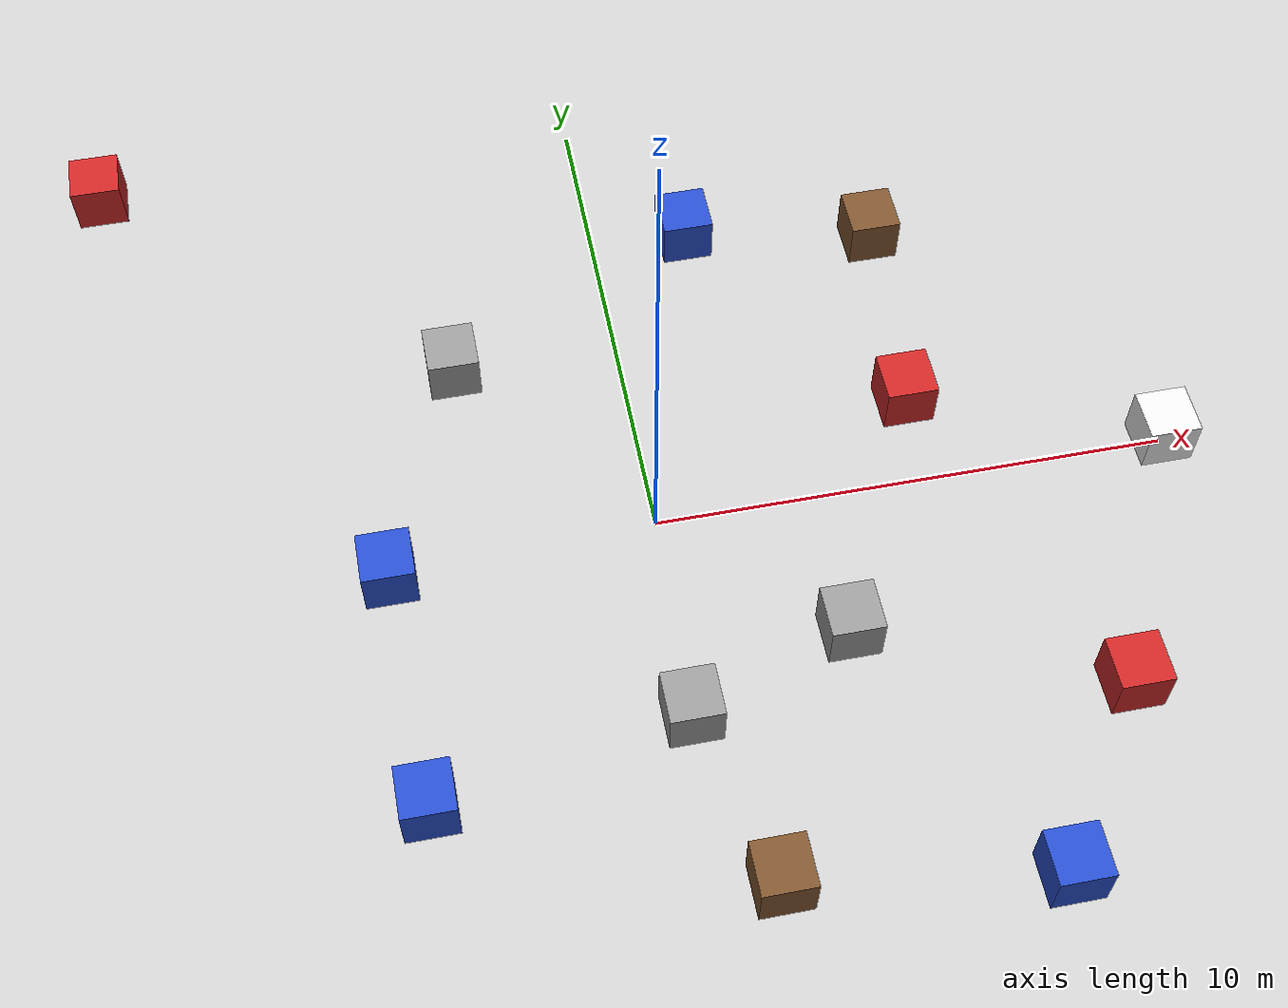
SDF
<sdf version="1.7">
 <world name="default">
  <light name="sun" type="directional">
   <pose>0 0 10 0 -0 0</pose>
   <diffuse>0.8 0.8 0.8 1</diffuse>
   <specular>0.2 0.2 0.2 1</specular>
   <attenuation>
    <range>1000</range>
    <constant>0.9</constant>
    <linear>0.01</linear>
    <quadratic>0.001</quadratic>
   </attenuation>
   <direction>-0.5 0.1 -0.9</direction>
   <spot><inner_angle>0</inner_angle><outer_angle>0</outer_angle><falloff>0</falloff></spot>
  </light>
  <model name="ground_plane">
   <static>1</static>
   <link name="link">
    <collision name="collision">
     <geometry><plane><normal>0 0 1</normal><size>100 100</size></plane></geometry>
     <surface><friction><ode><mu>100</mu><mu2>50</mu2></ode></friction></surface>
    </collision>
    <visual name="visual">
     <cast_shadows>0</cast_shadows>
     <geometry><plane><normal>0 0 1</normal><size>100 100</size></plane></geometry>
     <material>
      <script><uri>file://media/materials/scripts/gazebo.material</uri><name>Gazebo/Grey</name></script>
     </material>
    </visual>
   </link>
  </model>
  <gravity>0 0 -9.8</gravity>
  <magnetic_field>6e-06 2.3e-05 -4.2e-05</magnetic_field>
  <atmosphere type="adiabatic"/>
  <physics type="ode">
   <max_step_size>0.001</max_step_size>
   <real_time_factor>1</real_time_factor>
   <real_time_update_rate>1000</real_time_update_rate>
  </physics>
  <scene><ambient>0.4 0.4 0.4 1</ambient><background>0.7 0.7 0.7 1</background><shadows>1</shadows></scene>
  <spherical_coordinates>
   <surface_model>EARTH_WGS84</surface_model>
   <latitude_deg>0</latitude_deg>
   <longitude_deg>0</longitude_deg>
   <elevation>0</elevation>
   <heading_deg>0</heading_deg>
  </spherical_coordinates>
  <model name="box_red">
   <pose>-9.99999 10 0.499995 0 1e-05 0</pose>
   <scale>1 1 1</scale>
   <link name="link">
    <velocity>0 0 0 0 -0 0</velocity>
    <acceleration>0.010615 0.006191 -9.78231 -0.012424 0.021225 -1.8e-05</acceleration>
    <wrench>0.010615 0.006191 -9.78231 0 -0 0</wrench>
    <inertial>
     <mass>1</mass>
     <inertia>
      <ixx>0.166667</ixx>
      <ixy>0</ixy>
      <ixz>0</ixz>
      <iyy>0.166667</iyy>
      <iyz>0</iyz>
      <izz>0.166667</izz>
     </inertia>
    </inertial>
    <collision name="collision"><geometry><box><size>1 1 1</size></box></geometry></collision>
    <visual name="visual">
     <geometry><box><size>1 1 1</size></box></geometry>
     <material>
      <script><name>Gazebo/Red</name><uri>file://media/materials/scripts/gazebo.material</uri></script>
     </material>
    </visual>
   </link>
  </model>
  <model name="box_blue">
   <pose>-5 -5 0.499995 1e-05 -0 0</pose>
   <scale>1 1 1</scale>
   <link name="link">
    <velocity>0 0 0 0 -0 0</velocity>
    <acceleration>0.004709 -0.011055 -9.78158 0.022108 0.009414 -1e-06</acceleration>
    <wrench>0.004709 -0.011055 -9.78158 0 -0 0</wrench>
    <inertial>
     <mass>1</mass>
     <inertia>
      <ixx>0.166667</ixx>
      <ixy>0</ixy>
      <ixz>0</ixz>
      <iyy>0.166667</iyy>
      <iyz>0</iyz>
      <izz>0.166667</izz>
     </inertia>
    </inertial>
    <collision name="collision"><geometry><box><size>1 1 1</size></box></geometry></collision>
    <visual name="visual">
     <geometry><box><size>1 1 1</size></box></geometry>
     <material>
      <script><name>Gazebo/Blue</name><uri>file://media/materials/scripts/gazebo.material</uri></script>
     </material>
    </visual>
   </link>
  </model>
  <model name="box_grey">
   <pose>3 -3 0.499995 1e-05 -0 0</pose>
   <scale>1 1 1</scale>
   <link name="link">
    <velocity>0 0 0 0 -0 0</velocity>
    <acceleration>0.010017 -0.026792 -9.75765 0.053325 0.020053 -3.9e-05</acceleration>
    <wrench>0.010017 -0.026792 -9.75765 0 -0 0</wrench>
    <inertial>
     <mass>1</mass>
     <inertia><ixx>0.145833</ixx><ixy>0</ixy><ixz>0</ixz><iyy>0.145833</iyy><iyz>0</iyz><izz>0.125</izz></inertia>
    </inertial>
    <collision name="collision"><geometry><box><size>1 1 1</size></box></geometry></collision>
    <visual name="visual">
     <geometry><box><size>1 1 1</size></box></geometry>
     <material>
      <script><name>Gazebo/Grey</name><uri>file://media/materials/scripts/gazebo.material</uri></script>
     </material>
    </visual>
   </link>
  </model>
  <model name="dog">
   <pose>10 -3e-06 0.499995 1e-05 -0 0</pose>
   <scale>1 1 1</scale>
   <link name="link">
    <velocity>0 0 0 0 -0 0</velocity>
    <acceleration>-0.010017 -0.026792 -9.75765 0.053325 -0.020053 3.9e-05</acceleration>
    <wrench>-0.010017 -0.026792 -9.75765 0 -0 0</wrench>
    <inertial>
     <mass>1</mass>
     <inertia><ixx>0.145833</ixx><ixy>0</ixy><ixz>0</ixz><iyy>0.145833</iyy><iyz>0</iyz><izz>0.125</izz></inertia>
    </inertial>
    <collision name="collision"><geometry><box><size>1 1 1</size></box></geometry></collision>
    <visual name="visual">
     <geometry><box><size>1 1 1</size></box></geometry>
     <material>
      <script><name>Gazebo/White</name><uri>file://media/materials/scripts/gazebo.material</uri></script>
     </material>
    </visual>
   </link>
  </model>
  <model name="box_blue_clone">
   <pose>-5.12232 -0.29977 0.499995 1e-05 -0 0</pose>
   <scale>1 1 1</scale>
   <link name="link">
    <velocity>0 0 0 0 -0 0</velocity>
    <acceleration>0.004709 -0.011055 -9.78158 0.022108 0.009414 -1e-06</acceleration>
    <wrench>0.004709 -0.011055 -9.78158 0 -0 0</wrench>
    <inertial>
     <mass>1</mass>
     <inertia>
      <ixx>0.166667</ixx>
      <ixy>0</ixy>
      <ixz>0</ixz>
      <iyy>0.166667</iyy>
      <iyz>0</iyz>
      <izz>0.166667</izz>
     </inertia>
    </inertial>
    <collision name="collision"><geometry><box><size>1 1 1</size></box></geometry></collision>
    <visual name="visual">
     <geometry><box><size>1 1 1</size></box></geometry>
     <material>
      <script><name>Gazebo/Blue</name><uri>file://media/materials/scripts/gazebo.material</uri></script>
     </material>
    </visual>
   </link>
  </model>
  <model name="box_blue_clone_0">
   <pose>1.90648 6.72876 0.499995 0 1e-05 0</pose>
   <scale>1 1 1</scale>
   <link name="link">
    <velocity>0 0 0 0 -0 0</velocity>
    <acceleration>0.010615 0.006191 -9.78231 -0.012424 0.021225 -1.8e-05</acceleration>
    <wrench>0.010615 0.006191 -9.78231 0 -0 0</wrench>
    <inertial>
     <mass>1</mass>
     <inertia>
      <ixx>0.166667</ixx>
      <ixy>0</ixy>
      <ixz>0</ixz>
      <iyy>0.166667</iyy>
      <iyz>0</iyz>
      <izz>0.166667</izz>
     </inertia>
    </inertial>
    <collision name="collision"><geometry><box><size>1 1 1</size></box></geometry></collision>
    <visual name="visual">
     <geometry><box><size>1 1 1</size></box></geometry>
     <material>
      <script><name>Gazebo/Blue</name><uri>file://media/materials/scripts/gazebo.material</uri></script>
     </material>
    </visual>
   </link>
  </model>
  <model name="box_blue_clone_1">
   <pose>5.53705 -8.22828 0.499995 0 -1e-05 0</pose>
   <scale>1 1 1</scale>
   <link name="link">
    <velocity>0 0 0 0 -0 0</velocity>
    <acceleration>0.004709 -0.011055 -9.78158 0.022108 0.009414 -1e-06</acceleration>
    <wrench>0.004709 -0.011055 -9.78158 0 -0 0</wrench>
    <inertial>
     <mass>1</mass>
     <inertia>
      <ixx>0.166667</ixx>
      <ixy>0</ixy>
      <ixz>0</ixz>
      <iyy>0.166667</iyy>
      <iyz>0</iyz>
      <izz>0.166667</izz>
     </inertia>
    </inertial>
    <collision name="collision"><geometry><box><size>1 1 1</size></box></geometry></collision>
    <visual name="visual">
     <geometry><box><size>1 1 1</size></box></geometry>
     <material>
      <script><name>Gazebo/Blue</name><uri>file://media/materials/scripts/gazebo.material</uri></script>
     </material>
    </visual>
   </link>
  </model>
  <model name="box_grey_clone">
   <pose>-0.176482 -4.12004 0.499995 -1e-05 0 0</pose>
   <scale>1 1 1</scale>
   <link name="link">
    <velocity>0 0 0 0 -0 0</velocity>
    <acceleration>-0.010017 0.026792 -9.75765 -0.053325 -0.020053 -3.9e-05</acceleration>
    <wrench>-0.010017 0.026792 -9.75765 0 -0 0</wrench>
    <inertial>
     <mass>1</mass>
     <inertia><ixx>0.145833</ixx><ixy>0</ixy><ixz>0</ixz><iyy>0.145833</iyy><iyz>0</iyz><izz>0.125</izz></inertia>
    </inertial>
    <collision name="collision"><geometry><box><size>1 1 1</size></box></geometry></collision>
    <visual name="visual">
     <geometry><box><size>1 1 1</size></box></geometry>
     <material>
      <script><name>Gazebo/Grey</name><uri>file://media/materials/scripts/gazebo.material</uri></script>
     </material>
    </visual>
   </link>
  </model>
  <model name="box_grey_clone_0">
   <pose>-3.3059 4.16906 0.5 -1e-05 -0 -0</pose>
   <scale>1 1 1</scale>
   <link name="link">
    <velocity>0 0 0 0 -0 0</velocity>
    <acceleration>0.010017 -9.75627 9.75765 0.663219 0.020053 0.000115</acceleration>
    <wrench>0.010017 -9.75627 9.75765 0 -0 0</wrench>
    <inertial>
     <mass>1</mass>
     <inertia><ixx>0.145833</ixx><ixy>0</ixy><ixz>0</ixz><iyy>0.145833</iyy><iyz>0</iyz><izz>0.125</izz></inertia>
    </inertial>
    <collision name="collision"><geometry><box><size>1 1 1</size></box></geometry></collision>
    <visual name="visual">
     <geometry><box><size>1 1 1</size></box></geometry>
     <material>
      <script><name>Gazebo/Grey</name><uri>file://media/materials/scripts/gazebo.material</uri></script>
     </material>
    </visual>
   </link>
  </model>
  <model name="box_red_clone">
   <pose>5.3271 1.82931 0.499995 0 1e-05 0</pose>
   <scale>1 1 1</scale>
   <link name="link">
    <velocity>0 0 0 0 -0 0</velocity>
    <acceleration>0.010615 0.006191 -9.78231 -0.012424 0.021225 -1.8e-05</acceleration>
    <wrench>0.010615 0.006191 -9.78231 0 -0 0</wrench>
    <inertial>
     <mass>1</mass>
     <inertia>
      <ixx>0.166667</ixx>
      <ixy>0</ixy>
      <ixz>0</ixz>
      <iyy>0.166667</iyy>
      <iyz>0</iyz>
      <izz>0.166667</izz>
     </inertia>
    </inertial>
    <collision name="collision"><geometry><box><size>1 1 1</size></box></geometry></collision>
    <visual name="visual">
     <geometry><box><size>1 1 1</size></box></geometry>
     <material>
      <script><name>Gazebo/Red</name><uri>file://media/materials/scripts/gazebo.material</uri></script>
     </material>
    </visual>
   </link>
  </model>
  <model name="box_red_clone_0">
   <pose>7.71833 -4.97241 0.499995 1e-05 -0 0</pose>
   <scale>1 1 1</scale>
   <link name="link">
    <velocity>0 0 0 0 -0 0</velocity>
    <acceleration>0.004709 -0.011055 -9.78158 0.022108 0.009414 -1e-06</acceleration>
    <wrench>0.004709 -0.011055 -9.78158 0 -0 0</wrench>
    <inertial>
     <mass>1</mass>
     <inertia>
      <ixx>0.166667</ixx>
      <ixy>0</ixy>
      <ixz>0</ixz>
      <iyy>0.166667</iyy>
      <iyz>0</iyz>
      <izz>0.166667</izz>
     </inertia>
    </inertial>
    <collision name="collision"><geometry><box><size>1 1 1</size></box></geometry></collision>
    <visual name="visual">
     <geometry><box><size>1 1 1</size></box></geometry>
     <material>
      <script><name>Gazebo/Red</name><uri>file://media/materials/scripts/gazebo.material</uri></script>
     </material>
    </visual>
   </link>
  </model>
  <model name="dog_clone">
   <pose>0.666449 -7.48088 0.499995 -1e-05 0 0</pose>
   <scale>1 1 1</scale>
   <link name="link">
    <velocity>0 0 0 0 -0 0</velocity>
    <acceleration>-0.010017 0.026792 -9.75765 -0.053325 -0.020053 -3.9e-05</acceleration>
    <wrench>-0.010017 0.026792 -9.75765 0 -0 0</wrench>
    <inertial>
     <mass>1</mass>
     <inertia><ixx>0.145833</ixx><ixy>0</ixy><ixz>0</ixz><iyy>0.145833</iyy><iyz>0</iyz><izz>0.125</izz></inertia>
    </inertial>
    <collision name="collision"><geometry><box><size>1 1 1</size></box></geometry></collision>
    <visual name="visual">
     <geometry><box><size>1 1 1</size></box></geometry>
     <material>
      <script><name>Gazebo/Brown</name><uri>file://media/materials/scripts/gazebo.material</uri></script>
     </material>
    </visual>
   </link>
  </model>
  <model name="dog_clone_0">
   <pose>5.68661 5.99976 0.5 0 -0 0</pose>
   <scale>1 1 1</scale>
   <link name="link">
    <velocity>0 0 0 0 -0 0</velocity>
    <acceleration>0.010017 -9.75627 9.75765 0.663219 0.020053 0.000115</acceleration>
    <wrench>0.010017 -9.75627 9.75765 0 -0 0</wrench>
    <inertial>
     <mass>1</mass>
     <inertia><ixx>0.145833</ixx><ixy>0</ixy><ixz>0</ixz><iyy>0.145833</iyy><iyz>0</iyz><izz>0.125</izz></inertia>
    </inertial>
    <collision name="collision"><geometry><box><size>1 1 1</size></box></geometry></collision>
    <visual name="visual">
     <geometry><box><size>1 1 1</size></box></geometry>
     <material>
      <script><name>Gazebo/Brown</name><uri>file://media/materials/scripts/gazebo.material</uri></script>
     </material>
    </visual>
   </link>
  </model>
 </world>
</sdf>
